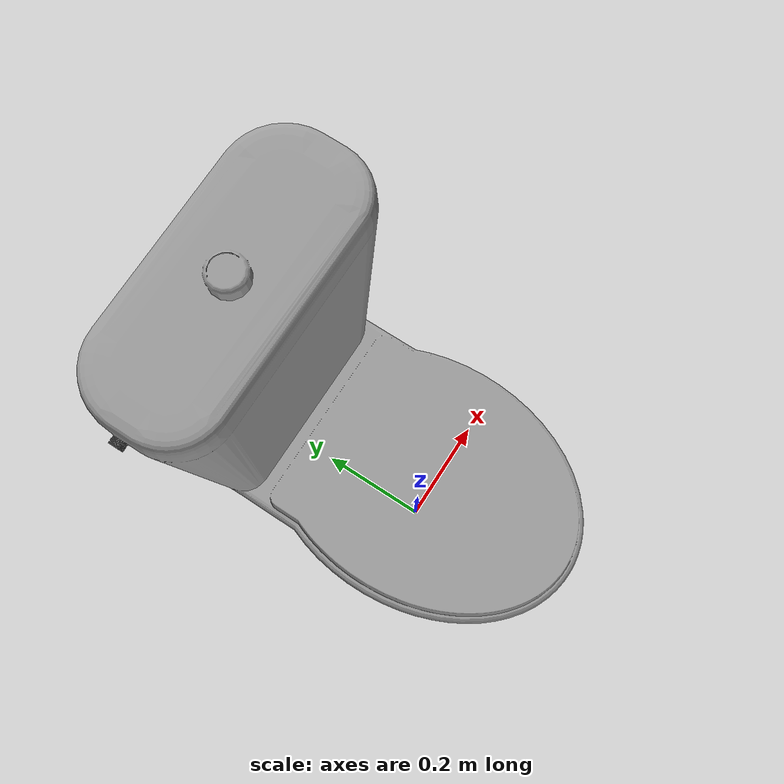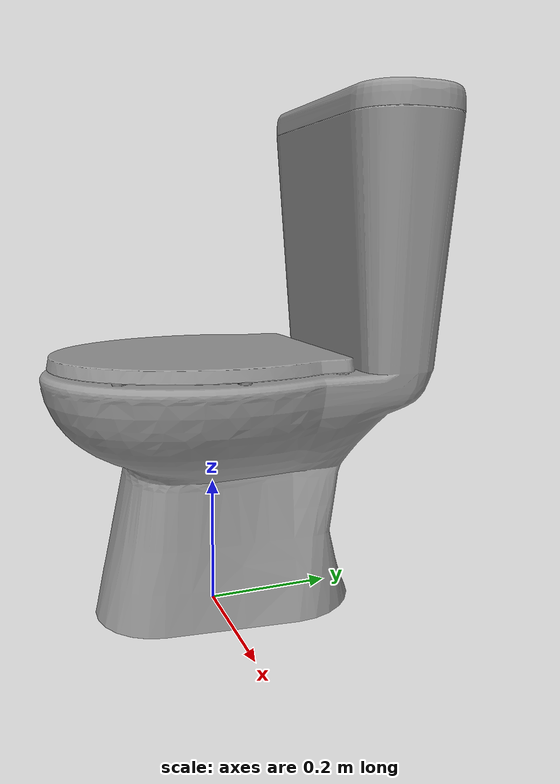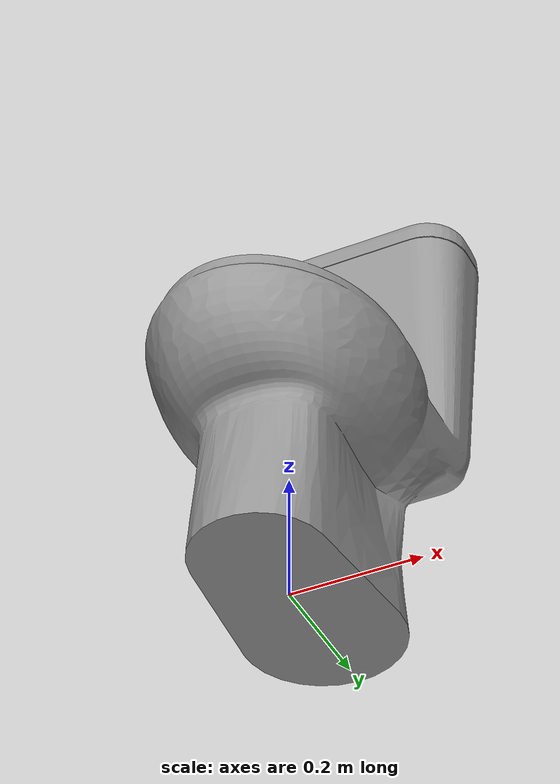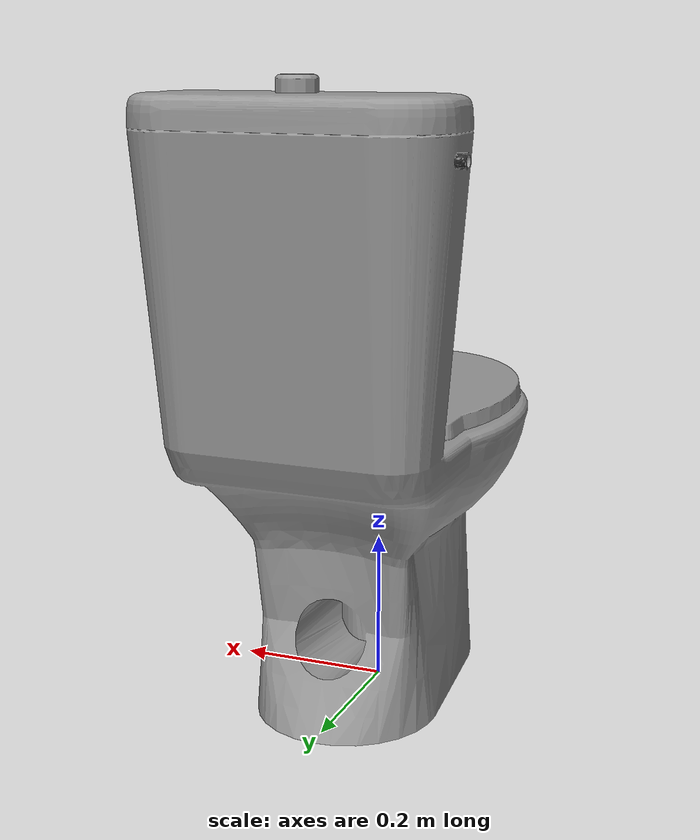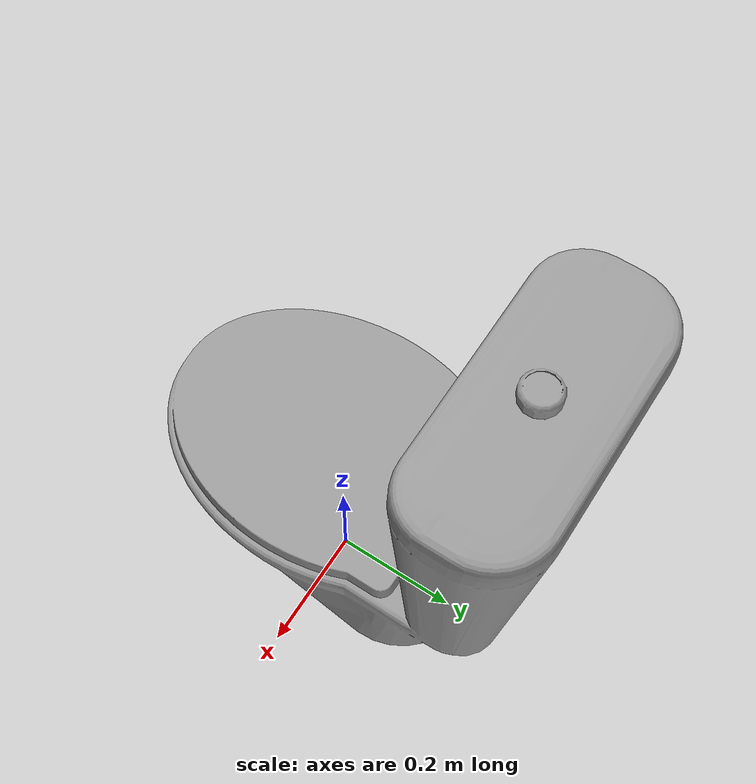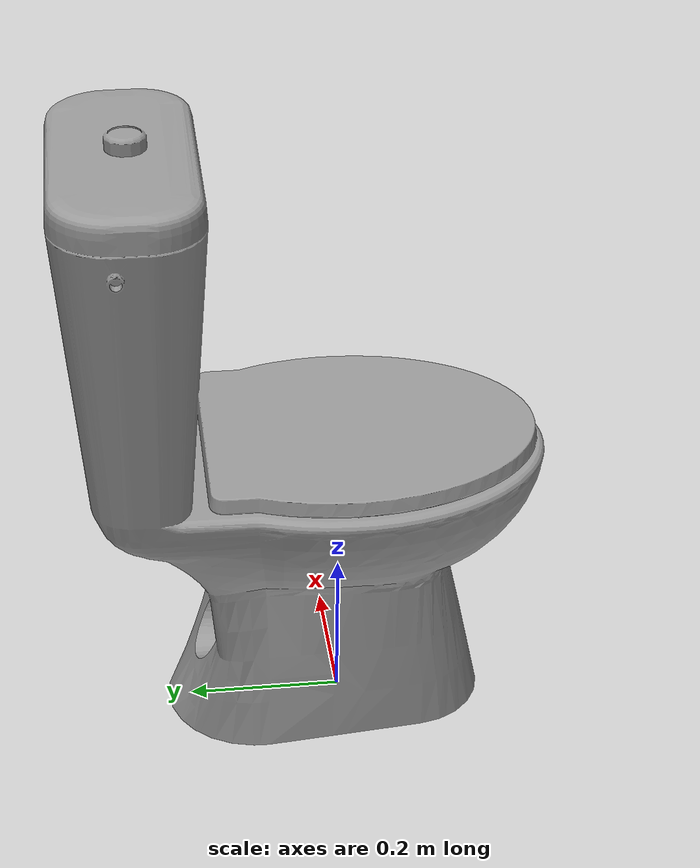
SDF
<?xml version='1.0'?>
<sdf version='1.6'>
  <model name='rai_toilette'>
    <link name='link_4'>
      <pose frame=''>0 0 0 0 -0 0</pose>
      <visual name='visual'>
        <pose frame=''>0 0.06 0 1.57 -0 0</pose>
        <geometry>
          <mesh>
             <uri>model://rai_toilette/meshes/rai_toilette.STL</uri>
            <scale>1 1 1</scale>
          </mesh>
        </geometry>
        <material>
          <lighting>1</lighting>
          <script>
            <uri>file://media/materials/scripts/gazebo.material</uri>
            <name>Gazebo/Grey</name>
          </script>
          <ambient>0.95 0.95 0.95 0.95</ambient>
          <diffuse>0.95 0.95 0.95 0.95</diffuse>
          <specular>0.01 0.01 0.01 1</specular>
          <emissive>0 0 0 1</emissive>
          <shader type='vertex'>
            <normal_map>__default__</normal_map>
          </shader>
        </material>
        <cast_shadows>1</cast_shadows>
        <transparency>0</transparency>
      </visual>
      <collision name='collision'>
        <pose frame=''>0 0 0.21 0 -0 0</pose>
        <geometry>
          <box>
            <size>0.39 0.53 0.43</size>
          </box>
        </geometry>
      </collision>
    </link>
    <static>1</static>
    <allow_auto_disable>1</allow_auto_disable>
  </model>
</sdf>
